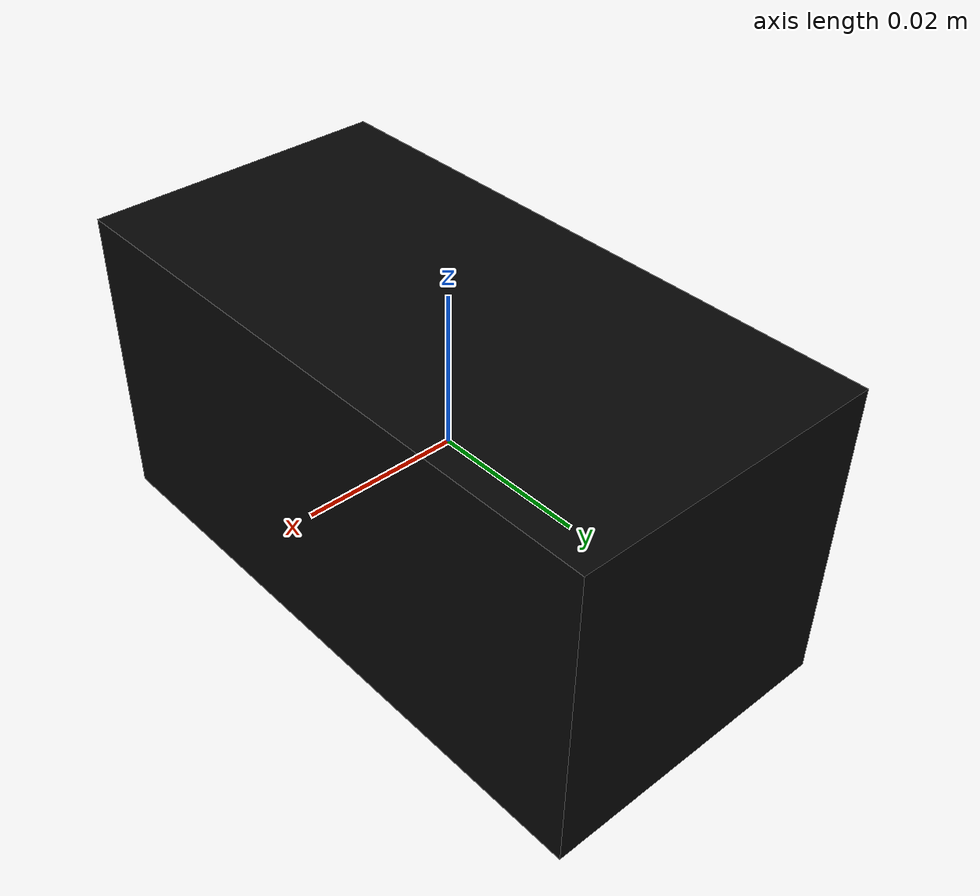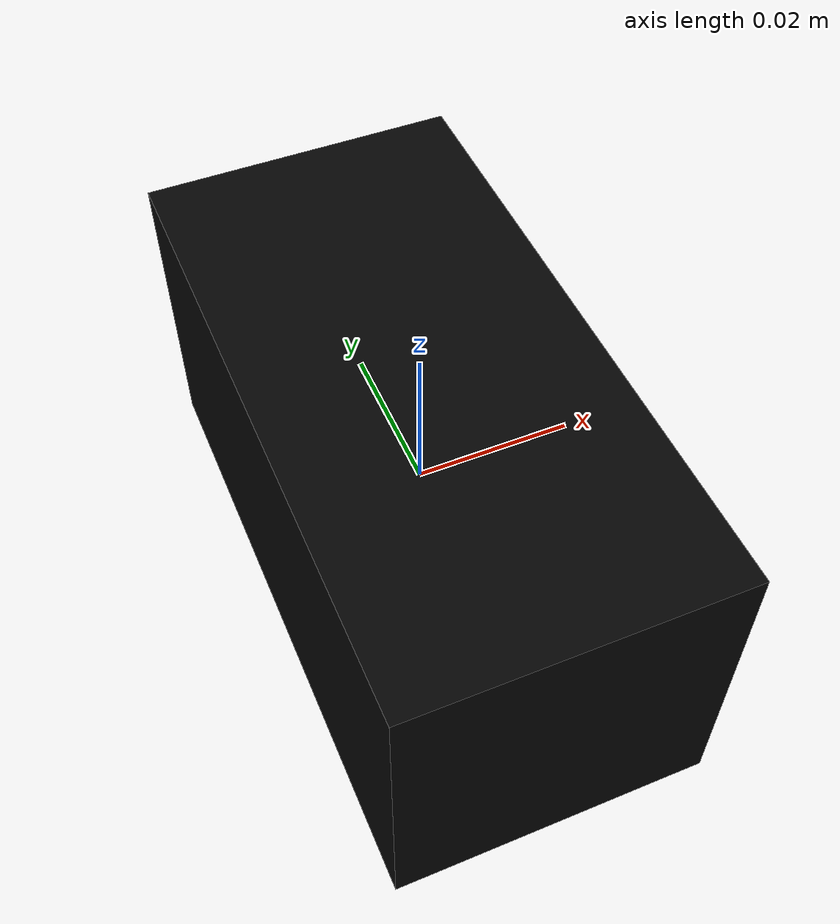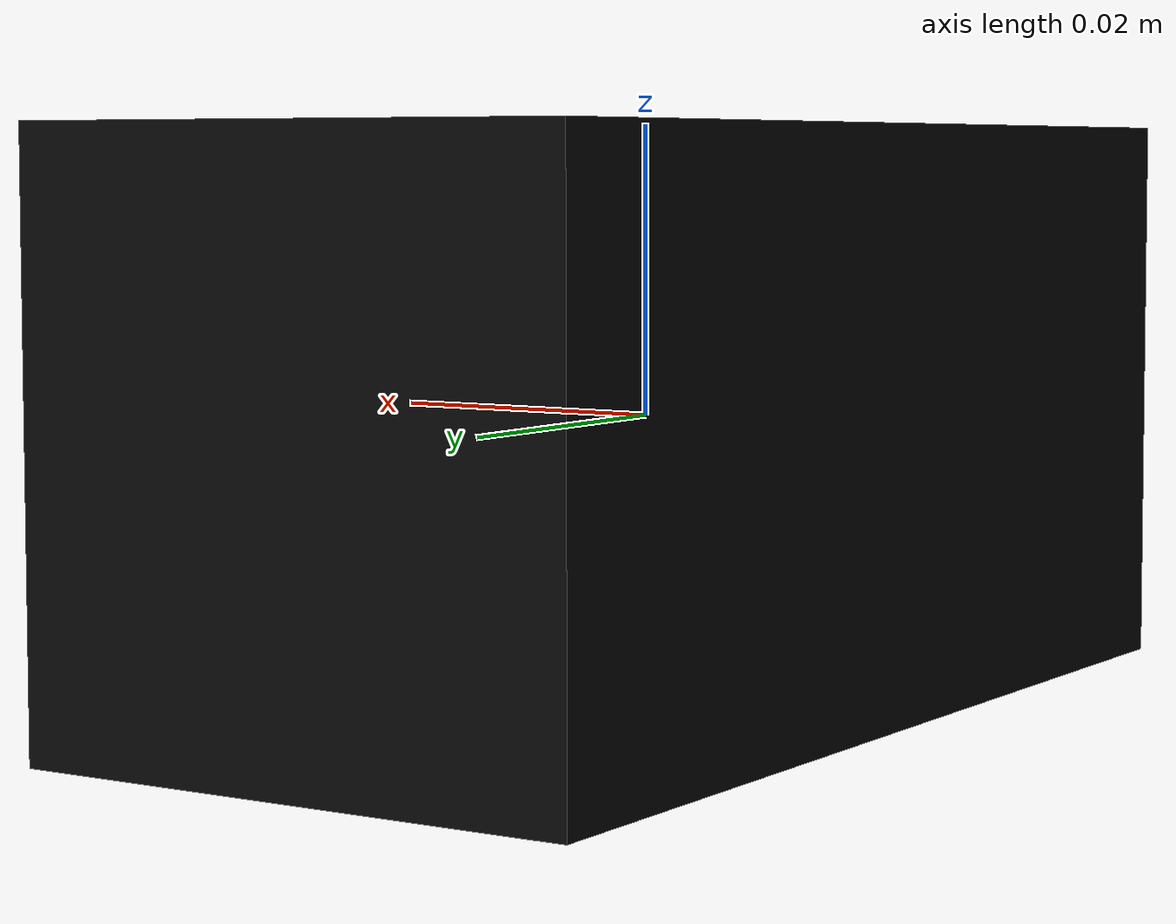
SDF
<?xml version="1.0"?>
<sdf version="1.6">
  <model name="rgbd_chaser_camera">
    <link name="camera_link">
      <pose>0 0 0 0 0 0</pose>
      <inertial>
        <mass>0.03</mass>
        <inertia>
          <ixx>1.0e-5</ixx>
          <ixy>0</ixy>
          <ixz>0</ixz>
          <iyy>1.0e-5</iyy>
          <iyz>0</iyz>
          <izz>1.0e-5</izz>
        </inertia>
      </inertial>
      <collision name="collision">
        <geometry>
          <box>
            <size>0.04 0.08 0.04</size>
          </box>
        </geometry>
      </collision>
      <visual name="visual">
        <geometry>
          <box>
            <size>0.04 0.08 0.04</size>
          </box>
        </geometry>
        <material>
          <ambient>0.02 0.02 0.02 1</ambient>
          <diffuse>0.02 0.02 0.02 1</diffuse>
          <specular>0.1 0.1 0.1 1</specular>
        </material>
      </visual>

      <sensor name="rgbd_camera" type="depth">
        <pose>0 0 0 0 0 0</pose>
        <always_on>true</always_on>
        <visualize>true</visualize>
        <update_rate>20</update_rate>
        <camera>
          <horizontal_fov>1.3962634</horizontal_fov>
          <image>
            <width>320</width>
            <height>240</height>
            <format>R8G8B8</format>
          </image>
          <clip>
            <near>0.2</near>
            <far>10.0</far>
          </clip>
        </camera>
        <plugin name="rgbd_camera_controller" filename="libgazebo_ros_openni_kinect.so">
          <robotNamespace>/uav</robotNamespace>
          <cameraName>camera</cameraName>
          <alwaysOn>true</alwaysOn>
          <updateRate>20</updateRate>
          <pointCloudCutoff>0.2</pointCloudCutoff>
          <pointCloudCutoffMax>10.0</pointCloudCutoffMax>
          <imageTopicName>rgb/image_raw</imageTopicName>
          <cameraInfoTopicName>rgb/camera_info</cameraInfoTopicName>
          <depthImageTopicName>depth/image_raw</depthImageTopicName>
          <depthImageCameraInfoTopicName>depth/camera_info</depthImageCameraInfoTopicName>
          <pointCloudTopicName>depth/points</pointCloudTopicName>
          <frameName>uav_camera_link</frameName>
          <distortion_k1>0.0</distortion_k1>
          <distortion_k2>0.0</distortion_k2>
          <distortion_k3>0.0</distortion_k3>
          <distortion_t1>0.0</distortion_t1>
          <distortion_t2>0.0</distortion_t2>
        </plugin>
      </sensor>
    </link>
  </model>
</sdf>
